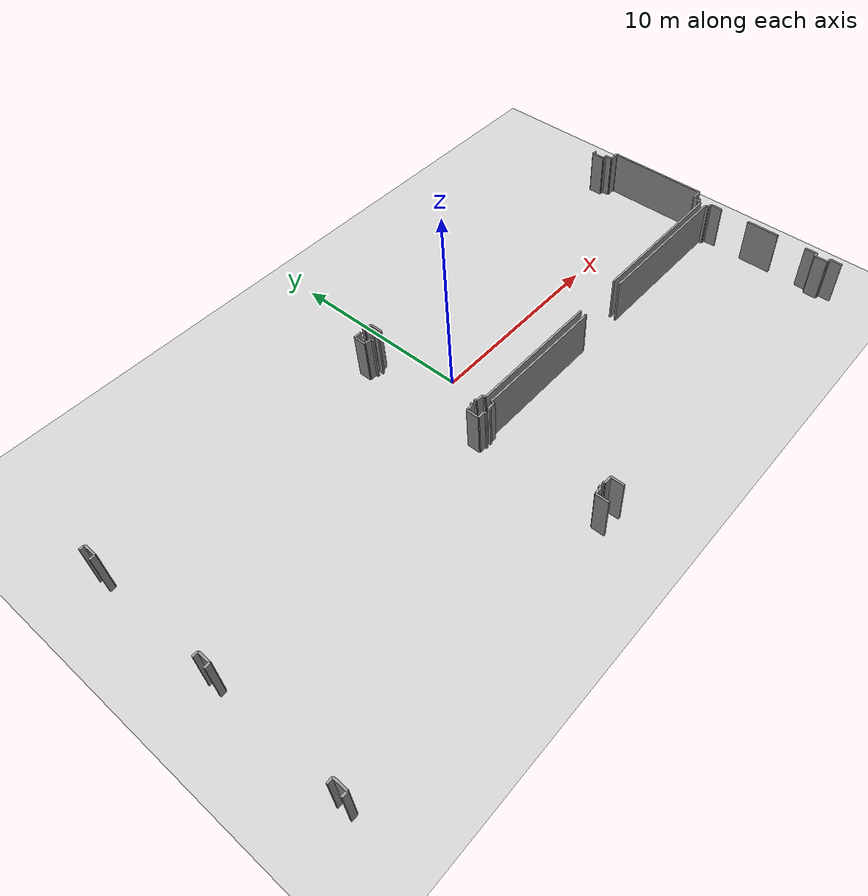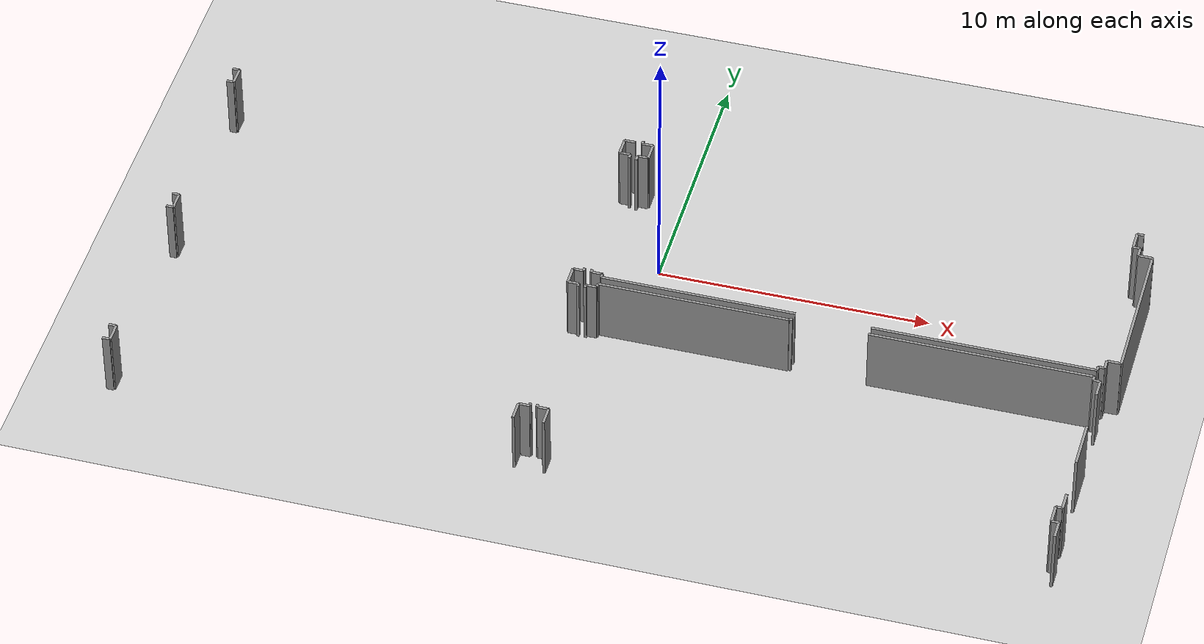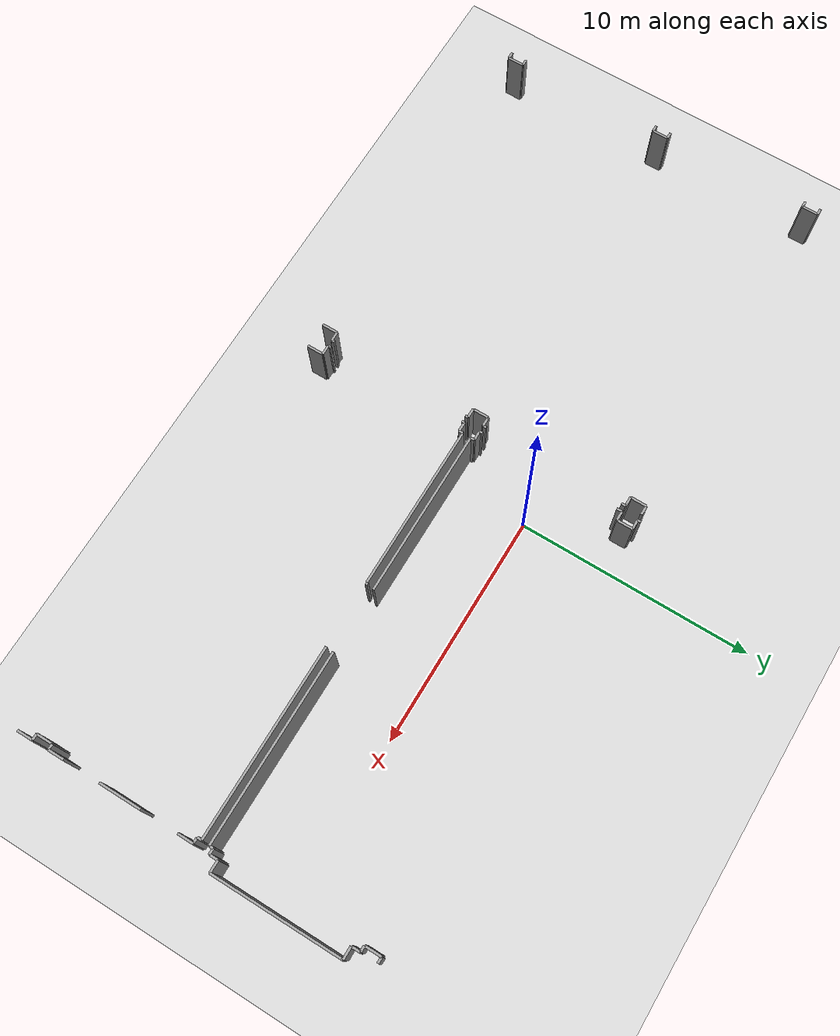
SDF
<sdf version="1.6">
 <world name="default">
  <model name="ground_plane">
   <static>1</static>
   <link name="link">
    <collision name="collision">
     <geometry><plane><normal>0 0 1</normal><size>100 100</size></plane></geometry>
     <surface><friction><ode><mu>100</mu><mu2>50</mu2></ode></friction></surface>
    </collision>
    <visual name="visual">
     <cast_shadows>0</cast_shadows>
     <geometry><plane><normal>0 0 1</normal><size>100 100</size></plane></geometry>
     <material>
      <script><uri>file://media/materials/scripts/gazebo.material</uri><name>Gazebo/Grey</name></script>
     </material>
    </visual>
   </link>
  </model>
  <model name="50055649">
   <static>1</static>
   <link name="Wall_23">
    <collision name="Wall_23_Collision">
     <geometry><box><size>0.282123295505 0.1 2.5</size></box></geometry>
     <pose>0.141061647753 0 1.25 0 0 0</pose>
    </collision>
    <visual name="Wall_23_Visual">
     <pose>0.141061647753 0 1.25 0 0 0</pose>
     <geometry><box><size>0.282123295505 0.1 2.5</size></box></geometry>
     <material>
      <script><uri>file://media/materials/scripts/gazebo.material</uri><name>Gazebo/Grey</name></script>
      <ambient>1 1 1 1</ambient>
     </material>
    </visual>
    <pose>0.0162665683895 -34.9051328648 0 0 0 0.0</pose>
   </link>
   <link name="Wall_24">
    <collision name="Wall_24_Collision">
     <geometry><box><size>0.690439578594 0.1 2.5</size></box></geometry>
     <pose>0.345219789297 0 1.25 0 0 0</pose>
    </collision>
    <visual name="Wall_24_Visual">
     <pose>0.345219789297 0 1.25 0 0 0</pose>
     <geometry><box><size>0.690439578594 0.1 2.5</size></box></geometry>
     <material>
      <script><uri>file://media/materials/scripts/gazebo.material</uri><name>Gazebo/Grey</name></script>
      <ambient>1 1 1 1</ambient>
     </material>
    </visual>
    <pose>0.298389863895 -34.9051328648 0 0 0 1.57079632679</pose>
   </link>
   <link name="Wall_25">
    <collision name="Wall_25_Collision">
     <geometry><box><size>0.281487882677 0.1 2.5</size></box></geometry>
     <pose>0.140743941339 0 1.25 0 0 0</pose>
    </collision>
    <visual name="Wall_25_Visual">
     <pose>0.140743941339 0 1.25 0 0 0</pose>
     <geometry><box><size>0.281487882677 0.1 2.5</size></box></geometry>
     <material>
      <script><uri>file://media/materials/scripts/gazebo.material</uri><name>Gazebo/Grey</name></script>
      <ambient>1 1 1 1</ambient>
     </material>
    </visual>
    <pose>0.298389863895 -34.2146932862 0 0 0 3.14159265359</pose>
   </link>
   <link name="Wall_26">
    <collision name="Wall_26_Collision">
     <geometry><box><size>0.267000470206 0.1 2.5</size></box></geometry>
     <pose>0.133500235103 0 1.25 0 0 0</pose>
    </collision>
    <visual name="Wall_26_Visual">
     <pose>0.133500235103 0 1.25 0 0 0</pose>
     <geometry><box><size>0.267000470206 0.1 2.5</size></box></geometry>
     <material>
      <script><uri>file://media/materials/scripts/gazebo.material</uri><name>Gazebo/Grey</name></script>
      <ambient>1 1 1 1</ambient>
     </material>
    </visual>
    <pose>0.0169019812172 -27.8824232104 0 0 0 0.0</pose>
   </link>
   <link name="Wall_27">
    <collision name="Wall_27_Collision">
     <geometry><box><size>0.679129230261 0.1 2.5</size></box></geometry>
     <pose>0.33956461513 0 1.25 0 0 0</pose>
    </collision>
    <visual name="Wall_27_Visual">
     <pose>0.33956461513 0 1.25 0 0 0</pose>
     <geometry><box><size>0.679129230261 0.1 2.5</size></box></geometry>
     <material>
      <script><uri>file://media/materials/scripts/gazebo.material</uri><name>Gazebo/Grey</name></script>
      <ambient>1 1 1 1</ambient>
     </material>
    </visual>
    <pose>0.283902451423 -27.8824232104 0 0 0 1.57079632679</pose>
   </link>
   <link name="Wall_28">
    <collision name="Wall_28_Collision">
     <geometry><box><size>0.263696323501 0.1 2.5</size></box></geometry>
     <pose>0.131848161751 0 1.25 0 0 0</pose>
    </collision>
    <visual name="Wall_28_Visual">
     <pose>0.131848161751 0 1.25 0 0 0</pose>
     <geometry><box><size>0.263696323501 0.1 2.5</size></box></geometry>
     <material>
      <script><uri>file://media/materials/scripts/gazebo.material</uri><name>Gazebo/Grey</name></script>
      <ambient>1 1 1 1</ambient>
     </material>
    </visual>
    <pose>0.283902451423 -27.2032939801 0 0 0 3.14159265359</pose>
   </link>
   <link name="Wall_29">
    <collision name="Wall_29_Collision">
     <geometry><box><size>0.267762965599 0.1 2.5</size></box></geometry>
     <pose>0.133881482799 0 1.25 0 0 0</pose>
    </collision>
    <visual name="Wall_29_Visual">
     <pose>0.133881482799 0 1.25 0 0 0</pose>
     <geometry><box><size>0.267762965599 0.1 2.5</size></box></geometry>
     <material>
      <script><uri>file://media/materials/scripts/gazebo.material</uri><name>Gazebo/Grey</name></script>
      <ambient>1 1 1 1</ambient>
     </material>
    </visual>
    <pose>0.0202061279213 -20.8951695917 0 0 0 0.0</pose>
   </link>
   <link name="Wall_30">
    <collision name="Wall_30_Collision">
     <geometry><box><size>0.689804165766 0.1 2.5</size></box></geometry>
     <pose>0.344902082883 0 1.25 0 0 0</pose>
    </collision>
    <visual name="Wall_30_Visual">
     <pose>0.344902082883 0 1.25 0 0 0</pose>
     <geometry><box><size>0.689804165766 0.1 2.5</size></box></geometry>
     <material>
      <script><uri>file://media/materials/scripts/gazebo.material</uri><name>Gazebo/Grey</name></script>
      <ambient>1 1 1 1</ambient>
     </material>
    </visual>
    <pose>0.28796909352 -20.8951695917 0 0 0 1.57079632679</pose>
   </link>
   <link name="Wall_31">
    <collision name="Wall_31_Collision">
     <geometry><box><size>0.266365057378 0.1 2.5</size></box></geometry>
     <pose>0.133182528689 0 1.25 0 0 0</pose>
    </collision>
    <visual name="Wall_31_Visual">
     <pose>0.133182528689 0 1.25 0 0 0</pose>
     <geometry><box><size>0.266365057378 0.1 2.5</size></box></geometry>
     <material>
      <script><uri>file://media/materials/scripts/gazebo.material</uri><name>Gazebo/Grey</name></script>
      <ambient>1 1 1 1</ambient>
     </material>
    </visual>
    <pose>0.28796909352 -20.2053654259 0 0 0 3.14159265359</pose>
   </link>
   <link name="Wall_52">
    <collision name="Wall_52_Collision">
     <geometry><box><size>0.401580907115 0.1 2.5</size></box></geometry>
     <pose>0.200790453558 0 1.25 0 0 0</pose>
    </collision>
    <visual name="Wall_52_Visual">
     <pose>0.200790453558 0 1.25 0 0 0</pose>
     <geometry><box><size>0.401580907115 0.1 2.5</size></box></geometry>
     <material>
      <script><uri>file://media/materials/scripts/gazebo.material</uri><name>Gazebo/Grey</name></script>
      <ambient>1 1 1 1</ambient>
     </material>
    </visual>
    <pose>15.4337963375 -20.2049841782 0 0 0 3.14159265359</pose>
   </link>
   <link name="Wall_53">
    <collision name="Wall_53_Collision">
     <geometry><box><size>0.682814624662 0.1 2.5</size></box></geometry>
     <pose>0.341407312331 0 1.25 0 0 0</pose>
    </collision>
    <visual name="Wall_53_Visual">
     <pose>0.341407312331 0 1.25 0 0 0</pose>
     <geometry><box><size>0.682814624662 0.1 2.5</size></box></geometry>
     <material>
      <script><uri>file://media/materials/scripts/gazebo.material</uri><name>Gazebo/Grey</name></script>
      <ambient>1 1 1 1</ambient>
     </material>
    </visual>
    <pose>15.0322154304 -20.2049841782 0 0 0 -1.57079632679</pose>
   </link>
   <link name="Wall_54">
    <collision name="Wall_54_Collision">
     <geometry><box><size>0.396116356797 0.1 2.5</size></box></geometry>
     <pose>0.198058178399 0 1.25 0 0 0</pose>
    </collision>
    <visual name="Wall_54_Visual">
     <pose>0.198058178399 0 1.25 0 0 0</pose>
     <geometry><box><size>0.396116356797 0.1 2.5</size></box></geometry>
     <material>
      <script><uri>file://media/materials/scripts/gazebo.material</uri><name>Gazebo/Grey</name></script>
      <ambient>1 1 1 1</ambient>
     </material>
    </visual>
    <pose>15.0322154304 -20.8877988029 0 0 0 0.0</pose>
   </link>
   <link name="Wall_55">
    <collision name="Wall_55_Collision">
     <geometry><box><size>0.180330160505 0.1 2.5</size></box></geometry>
     <pose>0.0901650802526 0 1.25 0 0 0</pose>
    </collision>
    <visual name="Wall_55_Visual">
     <pose>0.0901650802526 0 1.25 0 0 0</pose>
     <geometry><box><size>0.180330160505 0.1 2.5</size></box></geometry>
     <material>
      <script><uri>file://media/materials/scripts/gazebo.material</uri><name>Gazebo/Grey</name></script>
      <ambient>1 1 1 1</ambient>
     </material>
    </visual>
    <pose>15.4283317872 -20.8877988029 0 0 0 -1.57079632679</pose>
   </link>
   <link name="Wall_56">
    <collision name="Wall_56_Collision">
     <geometry><box><size>0.140044987228 0.1 2.5</size></box></geometry>
     <pose>0.0700224936141 0 1.25 0 0 0</pose>
    </collision>
    <visual name="Wall_56_Visual">
     <pose>0.0700224936141 0 1.25 0 0 0</pose>
     <geometry><box><size>0.140044987228 0.1 2.5</size></box></geometry>
     <material>
      <script><uri>file://media/materials/scripts/gazebo.material</uri><name>Gazebo/Grey</name></script>
      <ambient>1 1 1 1</ambient>
     </material>
    </visual>
    <pose>15.4283317872 -27.0734155981 0 0 0 -1.57079632679</pose>
   </link>
   <link name="Wall_57">
    <collision name="Wall_57_Collision">
     <geometry><box><size>0.3957351091 0.1 2.5</size></box></geometry>
     <pose>0.19786755455 0 1.25 0 0 0</pose>
    </collision>
    <visual name="Wall_57_Visual">
     <pose>0.19786755455 0 1.25 0 0 0</pose>
     <geometry><box><size>0.3957351091 0.1 2.5</size></box></geometry>
     <material>
      <script><uri>file://media/materials/scripts/gazebo.material</uri><name>Gazebo/Grey</name></script>
      <ambient>1 1 1 1</ambient>
     </material>
    </visual>
    <pose>15.4283317872 -27.2134605853 0 0 0 3.14159265359</pose>
   </link>
   <link name="Wall_58">
    <collision name="Wall_58_Collision">
     <geometry><box><size>0.681797964137 0.1 2.5</size></box></geometry>
     <pose>0.340898982069 0 1.25 0 0 0</pose>
    </collision>
    <visual name="Wall_58_Visual">
     <pose>0.340898982069 0 1.25 0 0 0</pose>
     <geometry><box><size>0.681797964137 0.1 2.5</size></box></geometry>
     <material>
      <script><uri>file://media/materials/scripts/gazebo.material</uri><name>Gazebo/Grey</name></script>
      <ambient>1 1 1 1</ambient>
     </material>
    </visual>
    <pose>15.0325966781 -27.2134605853 0 0 0 -1.57079632679</pose>
   </link>
   <link name="Wall_59">
    <collision name="Wall_59_Collision">
     <geometry><box><size>0.391922632134 0.1 2.5</size></box></geometry>
     <pose>0.195961316067 0 1.25 0 0 0</pose>
    </collision>
    <visual name="Wall_59_Visual">
     <pose>0.195961316067 0 1.25 0 0 0</pose>
     <geometry><box><size>0.391922632134 0.1 2.5</size></box></geometry>
     <material>
      <script><uri>file://media/materials/scripts/gazebo.material</uri><name>Gazebo/Grey</name></script>
      <ambient>1 1 1 1</ambient>
     </material>
    </visual>
    <pose>15.0325966781 -27.8952585495 0 0 0 0.0</pose>
   </link>
   <link name="Wall_60">
    <collision name="Wall_60_Collision">
     <geometry><box><size>0.125811739887 0.1 2.5</size></box></geometry>
     <pose>0.0629058699437 0 1.25 0 0 0</pose>
    </collision>
    <visual name="Wall_60_Visual">
     <pose>0.0629058699437 0 1.25 0 0 0</pose>
     <geometry><box><size>0.125811739887 0.1 2.5</size></box></geometry>
     <material>
      <script><uri>file://media/materials/scripts/gazebo.material</uri><name>Gazebo/Grey</name></script>
      <ambient>1 1 1 1</ambient>
     </material>
    </visual>
    <pose>15.4245193102 -27.8952585495 0 0 0 -1.57079632679</pose>
   </link>
   <link name="Wall_61">
    <collision name="Wall_61_Collision">
     <geometry><box><size>0.12632007015 0.1 2.5</size></box></geometry>
     <pose>0.0631600350748 0 1.25 0 0 0</pose>
    </collision>
    <visual name="Wall_61_Visual">
     <pose>0.0631600350748 0 1.25 0 0 0</pose>
     <geometry><box><size>0.12632007015 0.1 2.5</size></box></geometry>
     <material>
      <script><uri>file://media/materials/scripts/gazebo.material</uri><name>Gazebo/Grey</name></script>
      <ambient>1 1 1 1</ambient>
     </material>
    </visual>
    <pose>15.4245193102 -34.0952356746 0 0 0 -1.57079632679</pose>
   </link>
   <link name="Wall_62">
    <collision name="Wall_62_Collision">
     <geometry><box><size>0.402978815336 0.1 2.5</size></box></geometry>
     <pose>0.201489407668 0 1.25 0 0 0</pose>
    </collision>
    <visual name="Wall_62_Visual">
     <pose>0.201489407668 0 1.25 0 0 0</pose>
     <geometry><box><size>0.402978815336 0.1 2.5</size></box></geometry>
     <material>
      <script><uri>file://media/materials/scripts/gazebo.material</uri><name>Gazebo/Grey</name></script>
      <ambient>1 1 1 1</ambient>
     </material>
    </visual>
    <pose>15.4245193102 -34.2215557448 0 0 0 3.14159265359</pose>
   </link>
   <link name="Wall_63">
    <collision name="Wall_63_Collision">
     <geometry><box><size>0.690058330898 0.1 2.5</size></box></geometry>
     <pose>0.345029165449 0 1.25 0 0 0</pose>
    </collision>
    <visual name="Wall_63_Visual">
     <pose>0.345029165449 0 1.25 0 0 0</pose>
     <geometry><box><size>0.690058330898 0.1 2.5</size></box></geometry>
     <material>
      <script><uri>file://media/materials/scripts/gazebo.material</uri><name>Gazebo/Grey</name></script>
      <ambient>1 1 1 1</ambient>
     </material>
    </visual>
    <pose>15.0215404949 -34.2215557448 0 0 0 -1.57079632679</pose>
   </link>
   <link name="Wall_89">
    <collision name="Wall_89_Collision">
     <geometry><box><size>0.148178271423 0.1 2.5</size></box></geometry>
     <pose>0.0740891357115 0 1.25 0 0 0</pose>
    </collision>
    <visual name="Wall_89_Visual">
     <pose>0.0740891357115 0 1.25 0 0 0</pose>
     <geometry><box><size>0.148178271423 0.1 2.5</size></box></geometry>
     <material>
      <script><uri>file://media/materials/scripts/gazebo.material</uri><name>Gazebo/Grey</name></script>
      <ambient>1 1 1 1</ambient>
     </material>
    </visual>
    <pose>15.6948239271 -20.2240465631 0 0 0 1.57079632679</pose>
   </link>
   <link name="Wall_110">
    <collision name="Wall_110_Collision">
     <geometry><box><size>0.252004727471 0.1 2.5</size></box></geometry>
     <pose>0.126002363736 0 1.25 0 0 0</pose>
    </collision>
    <visual name="Wall_110_Visual">
     <pose>0.126002363736 0 1.25 0 0 0</pose>
     <geometry><box><size>0.252004727471 0.1 2.5</size></box></geometry>
     <material>
      <script><uri>file://media/materials/scripts/gazebo.material</uri><name>Gazebo/Grey</name></script>
      <ambient>1 1 1 1</ambient>
     </material>
    </visual>
    <pose>34.300474018 -20.2082883249 0 0 0 3.14159265359</pose>
   </link>
   <link name="Wall_111">
    <collision name="Wall_111_Collision">
     <geometry><box><size>0.704799908501 0.1 2.5</size></box></geometry>
     <pose>0.35239995425 0 1.25 0 0 0</pose>
    </collision>
    <visual name="Wall_111_Visual">
     <pose>0.35239995425 0 1.25 0 0 0</pose>
     <geometry><box><size>0.704799908501 0.1 2.5</size></box></geometry>
     <material>
      <script><uri>file://media/materials/scripts/gazebo.material</uri><name>Gazebo/Grey</name></script>
      <ambient>1 1 1 1</ambient>
     </material>
    </visual>
    <pose>34.0484692905 -20.2082883249 0 0 0 -1.57079632679</pose>
   </link>
   <link name="Wall_112">
    <collision name="Wall_112_Collision">
     <geometry><box><size>0.254292213651 0.1 2.5</size></box></geometry>
     <pose>0.127146106826 0 1.25 0 0 0</pose>
    </collision>
    <visual name="Wall_112_Visual">
     <pose>0.127146106826 0 1.25 0 0 0</pose>
     <geometry><box><size>0.254292213651 0.1 2.5</size></box></geometry>
     <material>
      <script><uri>file://media/materials/scripts/gazebo.material</uri><name>Gazebo/Grey</name></script>
      <ambient>1 1 1 1</ambient>
     </material>
    </visual>
    <pose>34.0484692905 -20.9130882334 0 0 0 0.0</pose>
   </link>
   <link name="Wall_113">
    <collision name="Wall_113_Collision">
     <geometry><box><size>0.377816467359 0.1 2.5</size></box></geometry>
     <pose>0.188908233679 0 1.25 0 0 0</pose>
    </collision>
    <visual name="Wall_113_Visual">
     <pose>0.188908233679 0 1.25 0 0 0</pose>
     <geometry><box><size>0.377816467359 0.1 2.5</size></box></geometry>
     <material>
      <script><uri>file://media/materials/scripts/gazebo.material</uri><name>Gazebo/Grey</name></script>
      <ambient>1 1 1 1</ambient>
     </material>
    </visual>
    <pose>34.3027615041 -20.9130882334 0 0 0 -1.57079632679</pose>
   </link>
   <link name="Wall_114">
    <collision name="Wall_114_Collision">
     <geometry><box><size>0.515828133538 0.1 2.5</size></box></geometry>
     <pose>0.257914066769 0 1.25 0 0 0</pose>
    </collision>
    <visual name="Wall_114_Visual">
     <pose>0.257914066769 0 1.25 0 0 0</pose>
     <geometry><box><size>0.515828133538 0.1 2.5</size></box></geometry>
     <material>
      <script><uri>file://media/materials/scripts/gazebo.material</uri><name>Gazebo/Grey</name></script>
      <ambient>1 1 1 1</ambient>
     </material>
    </visual>
    <pose>34.3027615041 -21.2909047008 0 0 0 0.0</pose>
   </link>
   <link name="Wall_115">
    <collision name="Wall_115_Collision">
     <geometry><box><size>0.0790453557676 0.1 2.5</size></box></geometry>
     <pose>0.0395226778838 0 1.25 0 0 0</pose>
    </collision>
    <visual name="Wall_115_Visual">
     <pose>0.0395226778838 0 1.25 0 0 0</pose>
     <geometry><box><size>0.0790453557676 0.1 2.5</size></box></geometry>
     <material>
      <script><uri>file://media/materials/scripts/gazebo.material</uri><name>Gazebo/Grey</name></script>
      <ambient>1 1 1 1</ambient>
     </material>
    </visual>
    <pose>34.8185896377 -21.2909047008 0 0 0 -1.57079632679</pose>
   </link>
   <link name="Wall_116">
    <collision name="Wall_116_Collision">
     <geometry><box><size>5.45514620849 0.1 2.5</size></box></geometry>
     <pose>2.72757310425 0 1.25 0 0 0</pose>
    </collision>
    <visual name="Wall_116_Visual">
     <pose>2.72757310425 0 1.25 0 0 0</pose>
     <geometry><box><size>5.45514620849 0.1 2.5</size></box></geometry>
     <material>
      <script><uri>file://media/materials/scripts/gazebo.material</uri><name>Gazebo/Grey</name></script>
      <ambient>1 1 1 1</ambient>
     </material>
    </visual>
    <pose>34.8185896377 -21.3699500566 0 0 0 -1.57079632679</pose>
   </link>
   <link name="Wall_117">
    <collision name="Wall_117_Collision">
     <geometry><box><size>0.513286482227 0.1 2.5</size></box></geometry>
     <pose>0.256643241114 0 1.25 0 0 0</pose>
    </collision>
    <visual name="Wall_117_Visual">
     <pose>0.256643241114 0 1.25 0 0 0</pose>
     <geometry><box><size>0.513286482227 0.1 2.5</size></box></geometry>
     <material>
      <script><uri>file://media/materials/scripts/gazebo.material</uri><name>Gazebo/Grey</name></script>
      <ambient>1 1 1 1</ambient>
     </material>
    </visual>
    <pose>34.8185896377 -26.825096265 0 0 0 3.14159265359</pose>
   </link>
   <link name="Wall_118">
    <collision name="Wall_118_Collision">
     <geometry><box><size>0.367649862115 0.1 2.5</size></box></geometry>
     <pose>0.183824931058 0 1.25 0 0 0</pose>
    </collision>
    <visual name="Wall_118_Visual">
     <pose>0.183824931058 0 1.25 0 0 0</pose>
     <geometry><box><size>0.367649862115 0.1 2.5</size></box></geometry>
     <material>
      <script><uri>file://media/materials/scripts/gazebo.material</uri><name>Gazebo/Grey</name></script>
      <ambient>1 1 1 1</ambient>
     </material>
    </visual>
    <pose>34.3053031555 -26.825096265 0 0 0 -1.57079632679</pose>
   </link>
   <link name="Wall_119">
    <collision name="Wall_119_Collision">
     <geometry><box><size>0.24234645249 0.1 2.5</size></box></geometry>
     <pose>0.121173226245 0 1.25 0 0 0</pose>
    </collision>
    <visual name="Wall_119_Visual">
     <pose>0.121173226245 0 1.25 0 0 0</pose>
     <geometry><box><size>0.24234645249 0.1 2.5</size></box></geometry>
     <material>
      <script><uri>file://media/materials/scripts/gazebo.material</uri><name>Gazebo/Grey</name></script>
      <ambient>1 1 1 1</ambient>
     </material>
    </visual>
    <pose>34.3053031555 -27.1927461272 0 0 0 3.14159265359</pose>
   </link>
   <link name="Wall_120">
    <collision name="Wall_120_Collision">
     <geometry><box><size>0.175501023015 0.1 2.5</size></box></geometry>
     <pose>0.0877505115073 0 1.25 0 0 0</pose>
    </collision>
    <visual name="Wall_120_Visual">
     <pose>0.0877505115073 0 1.25 0 0 0</pose>
     <geometry><box><size>0.175501023015 0.1 2.5</size></box></geometry>
     <material>
      <script><uri>file://media/materials/scripts/gazebo.material</uri><name>Gazebo/Grey</name></script>
      <ambient>1 1 1 1</ambient>
     </material>
    </visual>
    <pose>34.062956703 -27.1927461272 0 0 0 -1.57079632679</pose>
   </link>
   <link name="Wall_121">
    <collision name="Wall_121_Collision">
     <geometry><box><size>8.09795524152 0.1 2.5</size></box></geometry>
     <pose>4.04897762076 0 1.25 0 0 0</pose>
    </collision>
    <visual name="Wall_121_Visual">
     <pose>4.04897762076 0 1.25 0 0 0</pose>
     <geometry><box><size>8.09795524152 0.1 2.5</size></box></geometry>
     <material>
      <script><uri>file://media/materials/scripts/gazebo.material</uri><name>Gazebo/Grey</name></script>
      <ambient>1 1 1 1</ambient>
     </material>
    </visual>
    <pose>34.062956703 -27.3682471502 0 0 0 3.14159265359</pose>
   </link>
   <link name="Wall_122">
    <collision name="Wall_122_Collision">
     <geometry><box><size>7.10391541384 0.1 2.5</size></box></geometry>
     <pose>3.55195770692 0 1.25 0 0 0</pose>
    </collision>
    <visual name="Wall_122_Visual">
     <pose>3.55195770692 0 1.25 0 0 0</pose>
     <geometry><box><size>7.10391541384 0.1 2.5</size></box></geometry>
     <material>
      <script><uri>file://media/materials/scripts/gazebo.material</uri><name>Gazebo/Grey</name></script>
      <ambient>1 1 1 1</ambient>
     </material>
    </visual>
    <pose>23.2172222293 -27.3682471502 0 0 0 3.14159265359</pose>
   </link>
   <link name="Wall_123">
    <collision name="Wall_123_Collision">
     <geometry><box><size>0.165334417771 0.1 2.5</size></box></geometry>
     <pose>0.0826672088856 0 1.25 0 0 0</pose>
    </collision>
    <visual name="Wall_123_Visual">
     <pose>0.0826672088856 0 1.25 0 0 0</pose>
     <geometry><box><size>0.165334417771 0.1 2.5</size></box></geometry>
     <material>
      <script><uri>file://media/materials/scripts/gazebo.material</uri><name>Gazebo/Grey</name></script>
      <ambient>1 1 1 1</ambient>
     </material>
    </visual>
    <pose>16.1133068154 -27.3682471502 0 0 0 1.57079632679</pose>
   </link>
   <link name="Wall_124">
    <collision name="Wall_124_Collision">
     <geometry><box><size>0.411366264662 0.1 2.5</size></box></geometry>
     <pose>0.205683132331 0 1.25 0 0 0</pose>
    </collision>
    <visual name="Wall_124_Visual">
     <pose>0.205683132331 0 1.25 0 0 0</pose>
     <geometry><box><size>0.411366264662 0.1 2.5</size></box></geometry>
     <material>
      <script><uri>file://media/materials/scripts/gazebo.material</uri><name>Gazebo/Grey</name></script>
      <ambient>1 1 1 1</ambient>
     </material>
    </visual>
    <pose>16.1133068154 -27.2029127324 0 0 0 3.14159265359</pose>
   </link>
   <link name="Wall_125">
    <collision name="Wall_125_Collision">
     <geometry><box><size>0.124540914232 0.1 2.5</size></box></geometry>
     <pose>0.062270457116 0 1.25 0 0 0</pose>
    </collision>
    <visual name="Wall_125_Visual">
     <pose>0.062270457116 0 1.25 0 0 0</pose>
     <geometry><box><size>0.124540914232 0.1 2.5</size></box></geometry>
     <material>
      <script><uri>file://media/materials/scripts/gazebo.material</uri><name>Gazebo/Grey</name></script>
      <ambient>1 1 1 1</ambient>
     </material>
    </visual>
    <pose>15.7019405508 -27.2029127324 0 0 0 1.57079632679</pose>
   </link>
   <link name="Wall_126">
    <collision name="Wall_126_Collision">
     <geometry><box><size>0.225317388707 0.1 2.5</size></box></geometry>
     <pose>0.112658694354 0 1.25 0 0 0</pose>
    </collision>
    <visual name="Wall_126_Visual">
     <pose>0.112658694354 0 1.25 0 0 0</pose>
     <geometry><box><size>0.225317388707 0.1 2.5</size></box></geometry>
     <material>
      <script><uri>file://media/materials/scripts/gazebo.material</uri><name>Gazebo/Grey</name></script>
      <ambient>1 1 1 1</ambient>
     </material>
    </visual>
    <pose>15.7019405508 -21.1180724116 0 0 0 1.57079632679</pose>
   </link>
   <link name="Wall_127">
    <collision name="Wall_127_Collision">
     <geometry><box><size>0.401962154812 0.1 2.5</size></box></geometry>
     <pose>0.200981077406 0 1.25 0 0 0</pose>
    </collision>
    <visual name="Wall_127_Visual">
     <pose>0.200981077406 0 1.25 0 0 0</pose>
     <geometry><box><size>0.401962154812 0.1 2.5</size></box></geometry>
     <material>
      <script><uri>file://media/materials/scripts/gazebo.material</uri><name>Gazebo/Grey</name></script>
      <ambient>1 1 1 1</ambient>
     </material>
    </visual>
    <pose>15.7019405508 -20.8927550229 0 0 0 0.0</pose>
   </link>
   <link name="Wall_128">
    <collision name="Wall_128_Collision">
     <geometry><box><size>0.681289633875 0.1 2.5</size></box></geometry>
     <pose>0.340644816938 0 1.25 0 0 0</pose>
    </collision>
    <visual name="Wall_128_Visual">
     <pose>0.340644816938 0 1.25 0 0 0</pose>
     <geometry><box><size>0.681289633875 0.1 2.5</size></box></geometry>
     <material>
      <script><uri>file://media/materials/scripts/gazebo.material</uri><name>Gazebo/Grey</name></script>
      <ambient>1 1 1 1</ambient>
     </material>
    </visual>
    <pose>16.1039027056 -20.8927550229 0 0 0 1.57079632679</pose>
   </link>
   <link name="Wall_129">
    <collision name="Wall_129_Collision">
     <geometry><box><size>0.409272199085 0.1 2.5</size></box></geometry>
     <pose>0.204636099542 0 1.25 0 0 0</pose>
    </collision>
    <visual name="Wall_129_Visual">
     <pose>0.204636099542 0 1.25 0 0 0</pose>
     <geometry><box><size>0.409272199085 0.1 2.5</size></box></geometry>
     <material>
      <script><uri>file://media/materials/scripts/gazebo.material</uri><name>Gazebo/Grey</name></script>
      <ambient>1 1 1 1</ambient>
     </material>
    </visual>
    <pose>16.1039027056 -20.2114653891 0 0 0 -3.11084745191</pose>
   </link>
   <link name="Wall_139">
    <collision name="Wall_139_Collision">
     <geometry><box><size>0.700352018707 0.1 2.5</size></box></geometry>
     <pose>0.350176009353 0 1.25 0 0 0</pose>
    </collision>
    <visual name="Wall_139_Visual">
     <pose>0.350176009353 0 1.25 0 0 0</pose>
     <geometry><box><size>0.700352018707 0.1 2.5</size></box></geometry>
     <material>
      <script><uri>file://media/materials/scripts/gazebo.material</uri><name>Gazebo/Grey</name></script>
      <ambient>1 1 1 1</ambient>
     </material>
    </visual>
    <pose>16.1073339349 -34.9113599105 0 0 0 1.57079632679</pose>
   </link>
   <link name="Wall_140">
    <collision name="Wall_140_Collision">
     <geometry><box><size>0.41911830116 0.1 2.5</size></box></geometry>
     <pose>0.20955915058 0 1.25 0 0 0</pose>
    </collision>
    <visual name="Wall_140_Visual">
     <pose>0.20955915058 0 1.25 0 0 0</pose>
     <geometry><box><size>0.41911830116 0.1 2.5</size></box></geometry>
     <material>
      <script><uri>file://media/materials/scripts/gazebo.material</uri><name>Gazebo/Grey</name></script>
      <ambient>1 1 1 1</ambient>
     </material>
    </visual>
    <pose>16.1073339349 -34.2110078918 0 0 0 3.14159265359</pose>
   </link>
   <link name="Wall_141">
    <collision name="Wall_141_Collision">
     <geometry><box><size>0.118695116217 0.1 2.5</size></box></geometry>
     <pose>0.0593475581085 0 1.25 0 0 0</pose>
    </collision>
    <visual name="Wall_141_Visual">
     <pose>0.0593475581085 0 1.25 0 0 0</pose>
     <geometry><box><size>0.118695116217 0.1 2.5</size></box></geometry>
     <material>
      <script><uri>file://media/materials/scripts/gazebo.material</uri><name>Gazebo/Grey</name></script>
      <ambient>1 1 1 1</ambient>
     </material>
    </visual>
    <pose>15.6882156337 -34.2110078918 0 0 0 1.57079632679</pose>
   </link>
   <link name="Wall_142">
    <collision name="Wall_142_Collision">
     <geometry><box><size>0.123524253708 0.1 2.5</size></box></geometry>
     <pose>0.0617621268538 0 1.25 0 0 0</pose>
    </collision>
    <visual name="Wall_142_Visual">
     <pose>0.0617621268538 0 1.25 0 0 0</pose>
     <geometry><box><size>0.123524253708 0.1 2.5</size></box></geometry>
     <material>
      <script><uri>file://media/materials/scripts/gazebo.material</uri><name>Gazebo/Grey</name></script>
      <ambient>1 1 1 1</ambient>
     </material>
    </visual>
    <pose>15.6882156337 -28.0210702894 0 0 0 1.57079632679</pose>
   </link>
   <link name="Wall_143">
    <collision name="Wall_143_Collision">
     <geometry><box><size>0.40857044822 0.1 2.5</size></box></geometry>
     <pose>0.20428522411 0 1.25 0 0 0</pose>
    </collision>
    <visual name="Wall_143_Visual">
     <pose>0.20428522411 0 1.25 0 0 0</pose>
     <geometry><box><size>0.40857044822 0.1 2.5</size></box></geometry>
     <material>
      <script><uri>file://media/materials/scripts/gazebo.material</uri><name>Gazebo/Grey</name></script>
      <ambient>1 1 1 1</ambient>
     </material>
    </visual>
    <pose>15.6882156337 -27.8975460357 0 0 0 0.0</pose>
   </link>
   <link name="Wall_144">
    <collision name="Wall_144_Collision">
     <geometry><box><size>0.169909390131 0.1 2.5</size></box></geometry>
     <pose>0.0849546950654 0 1.25 0 0 0</pose>
    </collision>
    <visual name="Wall_144_Visual">
     <pose>0.0849546950654 0 1.25 0 0 0</pose>
     <geometry><box><size>0.169909390131 0.1 2.5</size></box></geometry>
     <material>
      <script><uri>file://media/materials/scripts/gazebo.material</uri><name>Gazebo/Grey</name></script>
      <ambient>1 1 1 1</ambient>
     </material>
    </visual>
    <pose>16.0967860819 -27.8975460357 0 0 0 1.57079632679</pose>
   </link>
   <link name="Wall_145">
    <collision name="Wall_145_Collision">
     <geometry><box><size>6.99144734334 0.1 2.5</size></box></geometry>
     <pose>3.49572367167 0 1.25 0 0 0</pose>
    </collision>
    <visual name="Wall_145_Visual">
     <pose>3.49572367167 0 1.25 0 0 0</pose>
     <geometry><box><size>6.99144734334 0.1 2.5</size></box></geometry>
     <material>
      <script><uri>file://media/materials/scripts/gazebo.material</uri><name>Gazebo/Grey</name></script>
      <ambient>1 1 1 1</ambient>
     </material>
    </visual>
    <pose>16.0967860819 -27.7276366455 0 0 0 0.0</pose>
   </link>
   <link name="Wall_146">
    <collision name="Wall_146_Collision">
     <geometry><box><size>0.0287206598127 0.1 2.5</size></box></geometry>
     <pose>0.0143603299063 0 1.25 0 0 0</pose>
    </collision>
    <visual name="Wall_146_Visual">
     <pose>0.0143603299063 0 1.25 0 0 0</pose>
     <geometry><box><size>0.0287206598127 0.1 2.5</size></box></geometry>
     <material>
      <script><uri>file://media/materials/scripts/gazebo.material</uri><name>Gazebo/Grey</name></script>
      <ambient>1 1 1 1</ambient>
     </material>
    </visual>
    <pose>23.0882334253 -27.7276366455 0 0 0 1.57079632679</pose>
   </link>
   <link name="Wall_147">
    <collision name="Wall_147_Collision">
     <geometry><box><size>0.115518052078 0.1 2.5</size></box></geometry>
     <pose>0.0577590260392 0 1.25 0 0 0</pose>
    </collision>
    <visual name="Wall_147_Visual">
     <pose>0.0577590260392 0 1.25 0 0 0</pose>
     <geometry><box><size>0.115518052078 0.1 2.5</size></box></geometry>
     <material>
      <script><uri>file://media/materials/scripts/gazebo.material</uri><name>Gazebo/Grey</name></script>
      <ambient>1 1 1 1</ambient>
     </material>
    </visual>
    <pose>23.0882334253 -27.6989159857 0 0 0 0.0</pose>
   </link>
   <link name="Wall_148">
    <collision name="Wall_148_Collision">
     <geometry><box><size>8.10240313131 0.1 2.5</size></box></geometry>
     <pose>4.05120156566 0 1.25 0 0 0</pose>
    </collision>
    <visual name="Wall_148_Visual">
     <pose>4.05120156566 0 1.25 0 0 0</pose>
     <geometry><box><size>8.10240313131 0.1 2.5</size></box></geometry>
     <material>
      <script><uri>file://media/materials/scripts/gazebo.material</uri><name>Gazebo/Grey</name></script>
      <ambient>1 1 1 1</ambient>
     </material>
    </visual>
    <pose>25.9386953704 -27.6989159857 0 0 0 0.0</pose>
   </link>
   <link name="Wall_149">
    <collision name="Wall_149_Collision">
     <geometry><box><size>0.189861352921 0.1 2.5</size></box></geometry>
     <pose>0.0949306764605 0 1.25 0 0 0</pose>
    </collision>
    <visual name="Wall_149_Visual">
     <pose>0.0949306764605 0 1.25 0 0 0</pose>
     <geometry><box><size>0.189861352921 0.1 2.5</size></box></geometry>
     <material>
      <script><uri>file://media/materials/scripts/gazebo.material</uri><name>Gazebo/Grey</name></script>
      <ambient>1 1 1 1</ambient>
     </material>
    </visual>
    <pose>34.0410985017 -27.6989159857 0 0 0 -1.57079632679</pose>
   </link>
   <link name="Wall_150">
    <collision name="Wall_150_Collision">
     <geometry><box><size>0.248573498202 0.1 2.5</size></box></geometry>
     <pose>0.124286749101 0 1.25 0 0 0</pose>
    </collision>
    <visual name="Wall_150_Visual">
     <pose>0.124286749101 0 1.25 0 0 0</pose>
     <geometry><box><size>0.248573498202 0.1 2.5</size></box></geometry>
     <material>
      <script><uri>file://media/materials/scripts/gazebo.material</uri><name>Gazebo/Grey</name></script>
      <ambient>1 1 1 1</ambient>
     </material>
    </visual>
    <pose>34.0410985017 -27.8887773386 0 0 0 0.0</pose>
   </link>
   <link name="Wall_151">
    <collision name="Wall_151_Collision">
     <geometry><box><size>0.674681340467 0.1 2.5</size></box></geometry>
     <pose>0.337340670233 0 1.25 0 0 0</pose>
    </collision>
    <visual name="Wall_151_Visual">
     <pose>0.337340670233 0 1.25 0 0 0</pose>
     <geometry><box><size>0.674681340467 0.1 2.5</size></box></geometry>
     <material>
      <script><uri>file://media/materials/scripts/gazebo.material</uri><name>Gazebo/Grey</name></script>
      <ambient>1 1 1 1</ambient>
     </material>
    </visual>
    <pose>34.2896719999 -27.8887773386 0 0 0 -1.57079632679</pose>
   </link>
   <link name="Wall_152">
    <collision name="Wall_152_Collision">
     <geometry><box><size>1.80050578861 0.1 2.5</size></box></geometry>
     <pose>0.900252894305 0 1.25 0 0 0</pose>
    </collision>
    <visual name="Wall_152_Visual">
     <pose>0.900252894305 0 1.25 0 0 0</pose>
     <geometry><box><size>1.80050578861 0.1 2.5</size></box></geometry>
     <material>
      <script><uri>file://media/materials/scripts/gazebo.material</uri><name>Gazebo/Grey</name></script>
      <ambient>1 1 1 1</ambient>
     </material>
    </visual>
    <pose>34.2896719999 -30.1619031885 0 0 0 -1.57079632679</pose>
   </link>
   <link name="Wall_153">
    <collision name="Wall_153_Collision">
     <geometry><box><size>0.675316753295 0.1 2.5</size></box></geometry>
     <pose>0.337658376647 0 1.25 0 0 0</pose>
    </collision>
    <visual name="Wall_153_Visual">
     <pose>0.337658376647 0 1.25 0 0 0</pose>
     <geometry><box><size>0.675316753295 0.1 2.5</size></box></geometry>
     <material>
      <script><uri>file://media/materials/scripts/gazebo.material</uri><name>Gazebo/Grey</name></script>
      <ambient>1 1 1 1</ambient>
     </material>
    </visual>
    <pose>34.2896719999 -33.5330224047 0 0 0 -1.57079632679</pose>
   </link>
   <link name="Wall_154">
    <collision name="Wall_154_Collision">
     <geometry><box><size>0.236881902172 0.1 2.5</size></box></geometry>
     <pose>0.118440951086 0 1.25 0 0 0</pose>
    </collision>
    <visual name="Wall_154_Visual">
     <pose>0.118440951086 0 1.25 0 0 0</pose>
     <geometry><box><size>0.236881902172 0.1 2.5</size></box></geometry>
     <material>
      <script><uri>file://media/materials/scripts/gazebo.material</uri><name>Gazebo/Grey</name></script>
      <ambient>1 1 1 1</ambient>
     </material>
    </visual>
    <pose>34.2896719999 -34.208339158 0 0 0 3.14159265359</pose>
   </link>
   <link name="Wall_155">
    <collision name="Wall_155_Collision">
     <geometry><box><size>0.697810367396 0.1 2.5</size></box></geometry>
     <pose>0.348905183698 0 1.25 0 0 0</pose>
    </collision>
    <visual name="Wall_155_Visual">
     <pose>0.348905183698 0 1.25 0 0 0</pose>
     <geometry><box><size>0.697810367396 0.1 2.5</size></box></geometry>
     <material>
      <script><uri>file://media/materials/scripts/gazebo.material</uri><name>Gazebo/Grey</name></script>
      <ambient>1 1 1 1</ambient>
     </material>
    </visual>
    <pose>34.0527900977 -34.208339158 0 0 0 -1.57079632679</pose>
   </link>
   <link name="Wall_156">
    <collision name="Wall_156_Collision">
     <geometry><box><size>0.256071369569 0.1 2.5</size></box></geometry>
     <pose>0.128035684784 0 1.25 0 0 0</pose>
    </collision>
    <visual name="Wall_156_Visual">
     <pose>0.128035684784 0 1.25 0 0 0</pose>
     <geometry><box><size>0.256071369569 0.1 2.5</size></box></geometry>
     <material>
      <script><uri>file://media/materials/scripts/gazebo.material</uri><name>Gazebo/Grey</name></script>
      <ambient>1 1 1 1</ambient>
     </material>
    </visual>
    <pose>34.0527900977 -34.9061495253 0 0 0 0.0</pose>
   </link>
   <link name="Wall_157">
    <collision name="Wall_157_Collision">
     <geometry><box><size>0.678112569737 0.1 2.5</size></box></geometry>
     <pose>0.339056284868 0 1.25 0 0 0</pose>
    </collision>
    <visual name="Wall_157_Visual">
     <pose>0.339056284868 0 1.25 0 0 0</pose>
     <geometry><box><size>0.678112569737 0.1 2.5</size></box></geometry>
     <material>
      <script><uri>file://media/materials/scripts/gazebo.material</uri><name>Gazebo/Grey</name></script>
      <ambient>1 1 1 1</ambient>
     </material>
    </visual>
    <pose>34.3088614673 -34.9061495253 0 0 0 -1.57079632679</pose>
   </link>
   <pose>-17.4 24.1279607061 0 0 0 0</pose>
  </model>
 </world>
</sdf>
